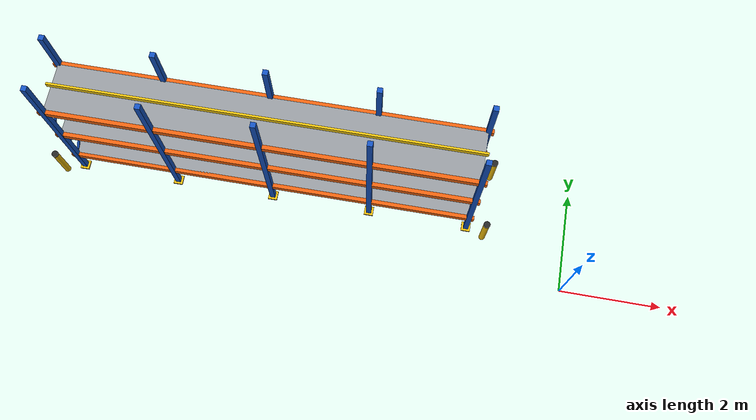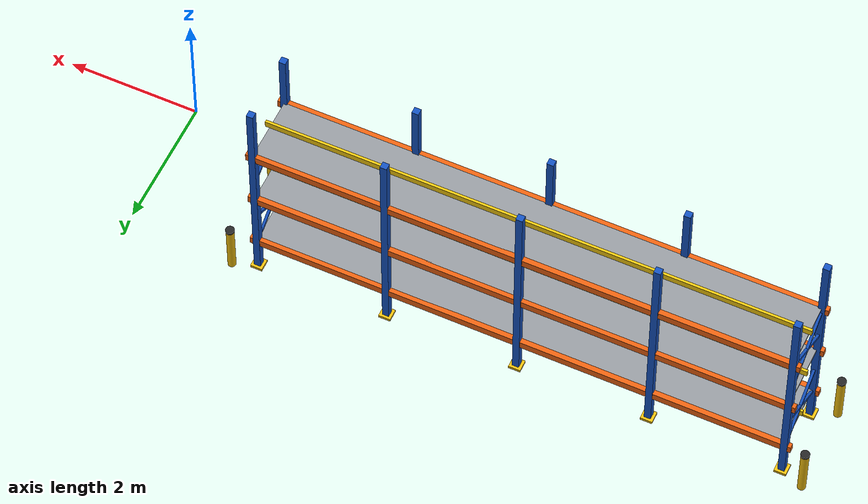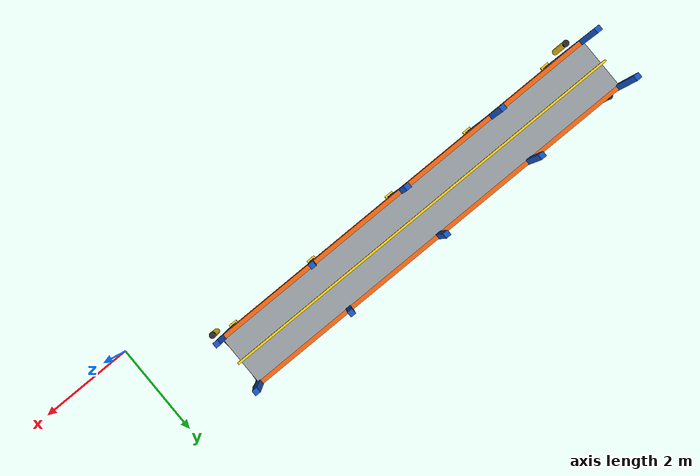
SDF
<sdf version="1.8">
 <world name="warehouse_3d">
  <model name="Rack_D">
   <static>true</static>
   <pose>-6.00 1.50 0 0 0 0</pose>
   <link name="col_0_0">
    <pose>-4.0000 -0.5000 1.8000 0.0000 0.0000 0.0000</pose>
    <collision name="col_0_0_col"><geometry><box><size>0.1000 0.1000 3.6000</size></box></geometry></collision>
    <visual name="col_0_0_vis">
     <geometry><box><size>0.1000 0.1000 3.6000</size></box></geometry>
     <material>
      <ambient>0.052 0.208 0.488 1.00</ambient>
      <diffuse>0.080 0.320 0.750 1.00</diffuse>
      <specular>0.15 0.15 0.15 1.0</specular>
     </material>
    </visual>
   </link>
   <link name="foot_0_0">
    <pose>-4.0000 -0.5000 0.0200 0.0000 0.0000 0.0000</pose>
    <collision name="foot_0_0_col"><geometry><box><size>0.1800 0.1800 0.0400</size></box></geometry></collision>
    <visual name="foot_0_0_vis">
     <geometry><box><size>0.1800 0.1800 0.0400</size></box></geometry>
     <material>
      <ambient>0.617 0.488 0.033 1.00</ambient>
      <diffuse>0.950 0.750 0.050 1.00</diffuse>
      <specular>0.15 0.15 0.15 1.0</specular>
     </material>
    </visual>
   </link>
   <link name="col_0_1">
    <pose>-4.0000 0.5000 1.8000 0.0000 0.0000 0.0000</pose>
    <collision name="col_0_1_col"><geometry><box><size>0.1000 0.1000 3.6000</size></box></geometry></collision>
    <visual name="col_0_1_vis">
     <geometry><box><size>0.1000 0.1000 3.6000</size></box></geometry>
     <material>
      <ambient>0.052 0.208 0.488 1.00</ambient>
      <diffuse>0.080 0.320 0.750 1.00</diffuse>
      <specular>0.15 0.15 0.15 1.0</specular>
     </material>
    </visual>
   </link>
   <link name="foot_0_1">
    <pose>-4.0000 0.5000 0.0200 0.0000 0.0000 0.0000</pose>
    <collision name="foot_0_1_col"><geometry><box><size>0.1800 0.1800 0.0400</size></box></geometry></collision>
    <visual name="foot_0_1_vis">
     <geometry><box><size>0.1800 0.1800 0.0400</size></box></geometry>
     <material>
      <ambient>0.617 0.488 0.033 1.00</ambient>
      <diffuse>0.950 0.750 0.050 1.00</diffuse>
      <specular>0.15 0.15 0.15 1.0</specular>
     </material>
    </visual>
   </link>
   <link name="col_1_0">
    <pose>-2.0000 -0.5000 1.8000 0.0000 0.0000 0.0000</pose>
    <collision name="col_1_0_col"><geometry><box><size>0.1000 0.1000 3.6000</size></box></geometry></collision>
    <visual name="col_1_0_vis">
     <geometry><box><size>0.1000 0.1000 3.6000</size></box></geometry>
     <material>
      <ambient>0.052 0.208 0.488 1.00</ambient>
      <diffuse>0.080 0.320 0.750 1.00</diffuse>
      <specular>0.15 0.15 0.15 1.0</specular>
     </material>
    </visual>
   </link>
   <link name="foot_1_0">
    <pose>-2.0000 -0.5000 0.0200 0.0000 0.0000 0.0000</pose>
    <collision name="foot_1_0_col"><geometry><box><size>0.1800 0.1800 0.0400</size></box></geometry></collision>
    <visual name="foot_1_0_vis">
     <geometry><box><size>0.1800 0.1800 0.0400</size></box></geometry>
     <material>
      <ambient>0.617 0.488 0.033 1.00</ambient>
      <diffuse>0.950 0.750 0.050 1.00</diffuse>
      <specular>0.15 0.15 0.15 1.0</specular>
     </material>
    </visual>
   </link>
   <link name="col_1_1">
    <pose>-2.0000 0.5000 1.8000 0.0000 0.0000 0.0000</pose>
    <collision name="col_1_1_col"><geometry><box><size>0.1000 0.1000 3.6000</size></box></geometry></collision>
    <visual name="col_1_1_vis">
     <geometry><box><size>0.1000 0.1000 3.6000</size></box></geometry>
     <material>
      <ambient>0.052 0.208 0.488 1.00</ambient>
      <diffuse>0.080 0.320 0.750 1.00</diffuse>
      <specular>0.15 0.15 0.15 1.0</specular>
     </material>
    </visual>
   </link>
   <link name="foot_1_1">
    <pose>-2.0000 0.5000 0.0200 0.0000 0.0000 0.0000</pose>
    <collision name="foot_1_1_col"><geometry><box><size>0.1800 0.1800 0.0400</size></box></geometry></collision>
    <visual name="foot_1_1_vis">
     <geometry><box><size>0.1800 0.1800 0.0400</size></box></geometry>
     <material>
      <ambient>0.617 0.488 0.033 1.00</ambient>
      <diffuse>0.950 0.750 0.050 1.00</diffuse>
      <specular>0.15 0.15 0.15 1.0</specular>
     </material>
    </visual>
   </link>
   <link name="col_2_0">
    <pose>0.0000 -0.5000 1.8000 0.0000 0.0000 0.0000</pose>
    <collision name="col_2_0_col"><geometry><box><size>0.1000 0.1000 3.6000</size></box></geometry></collision>
    <visual name="col_2_0_vis">
     <geometry><box><size>0.1000 0.1000 3.6000</size></box></geometry>
     <material>
      <ambient>0.052 0.208 0.488 1.00</ambient>
      <diffuse>0.080 0.320 0.750 1.00</diffuse>
      <specular>0.15 0.15 0.15 1.0</specular>
     </material>
    </visual>
   </link>
   <link name="foot_2_0">
    <pose>0.0000 -0.5000 0.0200 0.0000 0.0000 0.0000</pose>
    <collision name="foot_2_0_col"><geometry><box><size>0.1800 0.1800 0.0400</size></box></geometry></collision>
    <visual name="foot_2_0_vis">
     <geometry><box><size>0.1800 0.1800 0.0400</size></box></geometry>
     <material>
      <ambient>0.617 0.488 0.033 1.00</ambient>
      <diffuse>0.950 0.750 0.050 1.00</diffuse>
      <specular>0.15 0.15 0.15 1.0</specular>
     </material>
    </visual>
   </link>
   <link name="col_2_1">
    <pose>0.0000 0.5000 1.8000 0.0000 0.0000 0.0000</pose>
    <collision name="col_2_1_col"><geometry><box><size>0.1000 0.1000 3.6000</size></box></geometry></collision>
    <visual name="col_2_1_vis">
     <geometry><box><size>0.1000 0.1000 3.6000</size></box></geometry>
     <material>
      <ambient>0.052 0.208 0.488 1.00</ambient>
      <diffuse>0.080 0.320 0.750 1.00</diffuse>
      <specular>0.15 0.15 0.15 1.0</specular>
     </material>
    </visual>
   </link>
   <link name="foot_2_1">
    <pose>0.0000 0.5000 0.0200 0.0000 0.0000 0.0000</pose>
    <collision name="foot_2_1_col"><geometry><box><size>0.1800 0.1800 0.0400</size></box></geometry></collision>
    <visual name="foot_2_1_vis">
     <geometry><box><size>0.1800 0.1800 0.0400</size></box></geometry>
     <material>
      <ambient>0.617 0.488 0.033 1.00</ambient>
      <diffuse>0.950 0.750 0.050 1.00</diffuse>
      <specular>0.15 0.15 0.15 1.0</specular>
     </material>
    </visual>
   </link>
   <link name="col_3_0">
    <pose>2.0000 -0.5000 1.8000 0.0000 0.0000 0.0000</pose>
    <collision name="col_3_0_col"><geometry><box><size>0.1000 0.1000 3.6000</size></box></geometry></collision>
    <visual name="col_3_0_vis">
     <geometry><box><size>0.1000 0.1000 3.6000</size></box></geometry>
     <material>
      <ambient>0.052 0.208 0.488 1.00</ambient>
      <diffuse>0.080 0.320 0.750 1.00</diffuse>
      <specular>0.15 0.15 0.15 1.0</specular>
     </material>
    </visual>
   </link>
   <link name="foot_3_0">
    <pose>2.0000 -0.5000 0.0200 0.0000 0.0000 0.0000</pose>
    <collision name="foot_3_0_col"><geometry><box><size>0.1800 0.1800 0.0400</size></box></geometry></collision>
    <visual name="foot_3_0_vis">
     <geometry><box><size>0.1800 0.1800 0.0400</size></box></geometry>
     <material>
      <ambient>0.617 0.488 0.033 1.00</ambient>
      <diffuse>0.950 0.750 0.050 1.00</diffuse>
      <specular>0.15 0.15 0.15 1.0</specular>
     </material>
    </visual>
   </link>
   <link name="col_3_1">
    <pose>2.0000 0.5000 1.8000 0.0000 0.0000 0.0000</pose>
    <collision name="col_3_1_col"><geometry><box><size>0.1000 0.1000 3.6000</size></box></geometry></collision>
    <visual name="col_3_1_vis">
     <geometry><box><size>0.1000 0.1000 3.6000</size></box></geometry>
     <material>
      <ambient>0.052 0.208 0.488 1.00</ambient>
      <diffuse>0.080 0.320 0.750 1.00</diffuse>
      <specular>0.15 0.15 0.15 1.0</specular>
     </material>
    </visual>
   </link>
   <link name="foot_3_1">
    <pose>2.0000 0.5000 0.0200 0.0000 0.0000 0.0000</pose>
    <collision name="foot_3_1_col"><geometry><box><size>0.1800 0.1800 0.0400</size></box></geometry></collision>
    <visual name="foot_3_1_vis">
     <geometry><box><size>0.1800 0.1800 0.0400</size></box></geometry>
     <material>
      <ambient>0.617 0.488 0.033 1.00</ambient>
      <diffuse>0.950 0.750 0.050 1.00</diffuse>
      <specular>0.15 0.15 0.15 1.0</specular>
     </material>
    </visual>
   </link>
   <link name="col_4_0">
    <pose>4.0000 -0.5000 1.8000 0.0000 0.0000 0.0000</pose>
    <collision name="col_4_0_col"><geometry><box><size>0.1000 0.1000 3.6000</size></box></geometry></collision>
    <visual name="col_4_0_vis">
     <geometry><box><size>0.1000 0.1000 3.6000</size></box></geometry>
     <material>
      <ambient>0.052 0.208 0.488 1.00</ambient>
      <diffuse>0.080 0.320 0.750 1.00</diffuse>
      <specular>0.15 0.15 0.15 1.0</specular>
     </material>
    </visual>
   </link>
   <link name="foot_4_0">
    <pose>4.0000 -0.5000 0.0200 0.0000 0.0000 0.0000</pose>
    <collision name="foot_4_0_col"><geometry><box><size>0.1800 0.1800 0.0400</size></box></geometry></collision>
    <visual name="foot_4_0_vis">
     <geometry><box><size>0.1800 0.1800 0.0400</size></box></geometry>
     <material>
      <ambient>0.617 0.488 0.033 1.00</ambient>
      <diffuse>0.950 0.750 0.050 1.00</diffuse>
      <specular>0.15 0.15 0.15 1.0</specular>
     </material>
    </visual>
   </link>
   <link name="col_4_1">
    <pose>4.0000 0.5000 1.8000 0.0000 0.0000 0.0000</pose>
    <collision name="col_4_1_col"><geometry><box><size>0.1000 0.1000 3.6000</size></box></geometry></collision>
    <visual name="col_4_1_vis">
     <geometry><box><size>0.1000 0.1000 3.6000</size></box></geometry>
     <material>
      <ambient>0.052 0.208 0.488 1.00</ambient>
      <diffuse>0.080 0.320 0.750 1.00</diffuse>
      <specular>0.15 0.15 0.15 1.0</specular>
     </material>
    </visual>
   </link>
   <link name="foot_4_1">
    <pose>4.0000 0.5000 0.0200 0.0000 0.0000 0.0000</pose>
    <collision name="foot_4_1_col"><geometry><box><size>0.1800 0.1800 0.0400</size></box></geometry></collision>
    <visual name="foot_4_1_vis">
     <geometry><box><size>0.1800 0.1800 0.0400</size></box></geometry>
     <material>
      <ambient>0.617 0.488 0.033 1.00</ambient>
      <diffuse>0.950 0.750 0.050 1.00</diffuse>
      <specular>0.15 0.15 0.15 1.0</specular>
     </material>
    </visual>
   </link>
   <link name="x_brace_low_1_w">
    <pose>-4.0000 0.0000 0.9000 0.5500 0.0000 0.0000</pose>
    <visual name="x_brace_low_1_w_vis">
     <geometry><box><size>0.0400 1.0500 0.0400</size></box></geometry>
     <material>
      <ambient>0.052 0.208 0.488 1.00</ambient>
      <diffuse>0.080 0.320 0.750 1.00</diffuse>
      <specular>0.15 0.15 0.15 1.0</specular>
     </material>
    </visual>
   </link>
   <link name="x_brace_low_2_w">
    <pose>-4.0000 0.0000 0.9000 -0.5500 0.0000 0.0000</pose>
    <visual name="x_brace_low_2_w_vis">
     <geometry><box><size>0.0400 1.0500 0.0400</size></box></geometry>
     <material>
      <ambient>0.052 0.208 0.488 1.00</ambient>
      <diffuse>0.080 0.320 0.750 1.00</diffuse>
      <specular>0.15 0.15 0.15 1.0</specular>
     </material>
    </visual>
   </link>
   <link name="x_brace_hi_1_w">
    <pose>-4.0000 0.0000 2.3000 0.5500 0.0000 0.0000</pose>
    <visual name="x_brace_hi_1_w_vis">
     <geometry><box><size>0.0400 1.0500 0.0400</size></box></geometry>
     <material>
      <ambient>0.052 0.208 0.488 1.00</ambient>
      <diffuse>0.080 0.320 0.750 1.00</diffuse>
      <specular>0.15 0.15 0.15 1.0</specular>
     </material>
    </visual>
   </link>
   <link name="x_brace_hi_2_w">
    <pose>-4.0000 0.0000 2.3000 -0.5500 0.0000 0.0000</pose>
    <visual name="x_brace_hi_2_w_vis">
     <geometry><box><size>0.0400 1.0500 0.0400</size></box></geometry>
     <material>
      <ambient>0.052 0.208 0.488 1.00</ambient>
      <diffuse>0.080 0.320 0.750 1.00</diffuse>
      <specular>0.15 0.15 0.15 1.0</specular>
     </material>
    </visual>
   </link>
   <link name="x_brace_low_1_e">
    <pose>4.0000 0.0000 0.9000 0.5500 0.0000 0.0000</pose>
    <visual name="x_brace_low_1_e_vis">
     <geometry><box><size>0.0400 1.0500 0.0400</size></box></geometry>
     <material>
      <ambient>0.052 0.208 0.488 1.00</ambient>
      <diffuse>0.080 0.320 0.750 1.00</diffuse>
      <specular>0.15 0.15 0.15 1.0</specular>
     </material>
    </visual>
   </link>
   <link name="x_brace_low_2_e">
    <pose>4.0000 0.0000 0.9000 -0.5500 0.0000 0.0000</pose>
    <visual name="x_brace_low_2_e_vis">
     <geometry><box><size>0.0400 1.0500 0.0400</size></box></geometry>
     <material>
      <ambient>0.052 0.208 0.488 1.00</ambient>
      <diffuse>0.080 0.320 0.750 1.00</diffuse>
      <specular>0.15 0.15 0.15 1.0</specular>
     </material>
    </visual>
   </link>
   <link name="x_brace_hi_1_e">
    <pose>4.0000 0.0000 2.3000 0.5500 0.0000 0.0000</pose>
    <visual name="x_brace_hi_1_e_vis">
     <geometry><box><size>0.0400 1.0500 0.0400</size></box></geometry>
     <material>
      <ambient>0.052 0.208 0.488 1.00</ambient>
      <diffuse>0.080 0.320 0.750 1.00</diffuse>
      <specular>0.15 0.15 0.15 1.0</specular>
     </material>
    </visual>
   </link>
   <link name="x_brace_hi_2_e">
    <pose>4.0000 0.0000 2.3000 -0.5500 0.0000 0.0000</pose>
    <visual name="x_brace_hi_2_e_vis">
     <geometry><box><size>0.0400 1.0500 0.0400</size></box></geometry>
     <material>
      <ambient>0.052 0.208 0.488 1.00</ambient>
      <diffuse>0.080 0.320 0.750 1.00</diffuse>
      <specular>0.15 0.15 0.15 1.0</specular>
     </material>
    </visual>
   </link>
   <link name="beam_front_0">
    <pose>0.0000 0.5000 0.6000 0.0000 0.0000 0.0000</pose>
    <collision name="beam_front_0_col">
     <geometry><box><size>8.2000 0.0800 0.1200</size></box></geometry>
    </collision>
    <visual name="beam_front_0_vis">
     <geometry><box><size>8.2000 0.0800 0.1200</size></box></geometry>
     <material>
      <ambient>0.598 0.247 0.039 1.00</ambient>
      <diffuse>0.920 0.380 0.060 1.00</diffuse>
      <specular>0.15 0.15 0.15 1.0</specular>
     </material>
    </visual>
   </link>
   <link name="beam_rear_0">
    <pose>0.0000 -0.5000 0.6000 0.0000 0.0000 0.0000</pose>
    <collision name="beam_rear_0_col">
     <geometry><box><size>8.2000 0.0800 0.1200</size></box></geometry>
    </collision>
    <visual name="beam_rear_0_vis">
     <geometry><box><size>8.2000 0.0800 0.1200</size></box></geometry>
     <material>
      <ambient>0.598 0.247 0.039 1.00</ambient>
      <diffuse>0.920 0.380 0.060 1.00</diffuse>
      <specular>0.15 0.15 0.15 1.0</specular>
     </material>
    </visual>
   </link>
   <link name="deck_0">
    <pose>0.0000 0.0000 0.6400 0.0000 0.0000 0.0000</pose>
    <collision name="deck_0_col"><geometry><box><size>8.0000 0.9400 0.0400</size></box></geometry></collision>
    <visual name="deck_0_vis">
     <geometry><box><size>8.0000 0.9400 0.0400</size></box></geometry>
     <material>
      <ambient>0.377 0.390 0.403 1.00</ambient>
      <diffuse>0.580 0.600 0.620 1.00</diffuse>
      <specular>0.15 0.15 0.15 1.0</specular>
     </material>
    </visual>
   </link>
   <link name="backstop_0">
    <pose>0.0000 0.0000 0.7500 0.0000 0.0000 0.0000</pose>
    <visual name="backstop_0_vis">
     <geometry><box><size>8.1000 0.0400 0.1000</size></box></geometry>
     <material>
      <ambient>0.617 0.507 0.033 1.00</ambient>
      <diffuse>0.950 0.780 0.050 1.00</diffuse>
      <specular>0.15 0.15 0.15 1.0</specular>
     </material>
    </visual>
   </link>
   <link name="beam_front_1">
    <pose>0.0000 0.5000 1.6000 0.0000 0.0000 0.0000</pose>
    <collision name="beam_front_1_col">
     <geometry><box><size>8.2000 0.0800 0.1200</size></box></geometry>
    </collision>
    <visual name="beam_front_1_vis">
     <geometry><box><size>8.2000 0.0800 0.1200</size></box></geometry>
     <material>
      <ambient>0.598 0.247 0.039 1.00</ambient>
      <diffuse>0.920 0.380 0.060 1.00</diffuse>
      <specular>0.15 0.15 0.15 1.0</specular>
     </material>
    </visual>
   </link>
   <link name="beam_rear_1">
    <pose>0.0000 -0.5000 1.6000 0.0000 0.0000 0.0000</pose>
    <collision name="beam_rear_1_col">
     <geometry><box><size>8.2000 0.0800 0.1200</size></box></geometry>
    </collision>
    <visual name="beam_rear_1_vis">
     <geometry><box><size>8.2000 0.0800 0.1200</size></box></geometry>
     <material>
      <ambient>0.598 0.247 0.039 1.00</ambient>
      <diffuse>0.920 0.380 0.060 1.00</diffuse>
      <specular>0.15 0.15 0.15 1.0</specular>
     </material>
    </visual>
   </link>
   <link name="deck_1">
    <pose>0.0000 0.0000 1.6400 0.0000 0.0000 0.0000</pose>
    <collision name="deck_1_col"><geometry><box><size>8.0000 0.9400 0.0400</size></box></geometry></collision>
    <visual name="deck_1_vis">
     <geometry><box><size>8.0000 0.9400 0.0400</size></box></geometry>
     <material>
      <ambient>0.377 0.390 0.403 1.00</ambient>
      <diffuse>0.580 0.600 0.620 1.00</diffuse>
      <specular>0.15 0.15 0.15 1.0</specular>
     </material>
    </visual>
   </link>
   <link name="backstop_1">
    <pose>0.0000 0.0000 1.7500 0.0000 0.0000 0.0000</pose>
    <visual name="backstop_1_vis">
     <geometry><box><size>8.1000 0.0400 0.1000</size></box></geometry>
     <material>
      <ambient>0.617 0.507 0.033 1.00</ambient>
      <diffuse>0.950 0.780 0.050 1.00</diffuse>
      <specular>0.15 0.15 0.15 1.0</specular>
     </material>
    </visual>
   </link>
   <link name="beam_front_2">
    <pose>0.0000 0.5000 2.6000 0.0000 0.0000 0.0000</pose>
    <collision name="beam_front_2_col">
     <geometry><box><size>8.2000 0.0800 0.1200</size></box></geometry>
    </collision>
    <visual name="beam_front_2_vis">
     <geometry><box><size>8.2000 0.0800 0.1200</size></box></geometry>
     <material>
      <ambient>0.598 0.247 0.039 1.00</ambient>
      <diffuse>0.920 0.380 0.060 1.00</diffuse>
      <specular>0.15 0.15 0.15 1.0</specular>
     </material>
    </visual>
   </link>
   <link name="beam_rear_2">
    <pose>0.0000 -0.5000 2.6000 0.0000 0.0000 0.0000</pose>
    <collision name="beam_rear_2_col">
     <geometry><box><size>8.2000 0.0800 0.1200</size></box></geometry>
    </collision>
    <visual name="beam_rear_2_vis">
     <geometry><box><size>8.2000 0.0800 0.1200</size></box></geometry>
     <material>
      <ambient>0.598 0.247 0.039 1.00</ambient>
      <diffuse>0.920 0.380 0.060 1.00</diffuse>
      <specular>0.15 0.15 0.15 1.0</specular>
     </material>
    </visual>
   </link>
   <link name="deck_2">
    <pose>0.0000 0.0000 2.6400 0.0000 0.0000 0.0000</pose>
    <collision name="deck_2_col"><geometry><box><size>8.0000 0.9400 0.0400</size></box></geometry></collision>
    <visual name="deck_2_vis">
     <geometry><box><size>8.0000 0.9400 0.0400</size></box></geometry>
     <material>
      <ambient>0.377 0.390 0.403 1.00</ambient>
      <diffuse>0.580 0.600 0.620 1.00</diffuse>
      <specular>0.15 0.15 0.15 1.0</specular>
     </material>
    </visual>
   </link>
   <link name="backstop_2">
    <pose>0.0000 0.0000 2.7500 0.0000 0.0000 0.0000</pose>
    <visual name="backstop_2_vis">
     <geometry><box><size>8.1000 0.0400 0.1000</size></box></geometry>
     <material>
      <ambient>0.617 0.507 0.033 1.00</ambient>
      <diffuse>0.950 0.780 0.050 1.00</diffuse>
      <specular>0.15 0.15 0.15 1.0</specular>
     </material>
    </visual>
   </link>
   <link name="bollard_0">
    <pose>-4.3500 -0.6500 0.4000 0.0000 0.0000 0.0000</pose>
    <collision name="bollard_0_col">
     <geometry><cylinder><radius>0.0600</radius><length>0.8000</length></cylinder></geometry>
    </collision>
    <visual name="bollard_0_vis">
     <geometry><cylinder><radius>0.0600</radius><length>0.8000</length></cylinder></geometry>
     <material>
      <ambient>0.617 0.488 0.033 1.00</ambient>
      <diffuse>0.950 0.750 0.050 1.00</diffuse>
      <specular>0.2 0.2 0.2 1.0</specular>
     </material>
    </visual>
   </link>
   <link name="bollard_cap_0">
    <pose>-4.3500 -0.6500 0.8200 0.0000 0.0000 0.0000</pose>
    <collision name="bollard_cap_0_col">
     <geometry><cylinder><radius>0.0650</radius><length>0.0400</length></cylinder></geometry>
    </collision>
    <visual name="bollard_cap_0_vis">
     <geometry><cylinder><radius>0.0650</radius><length>0.0400</length></cylinder></geometry>
     <material>
      <ambient>0.098 0.098 0.098 1.00</ambient>
      <diffuse>0.150 0.150 0.150 1.00</diffuse>
      <specular>0.2 0.2 0.2 1.0</specular>
     </material>
    </visual>
   </link>
   <link name="bollard_1">
    <pose>-4.3500 0.6500 0.4000 0.0000 0.0000 0.0000</pose>
    <collision name="bollard_1_col">
     <geometry><cylinder><radius>0.0600</radius><length>0.8000</length></cylinder></geometry>
    </collision>
    <visual name="bollard_1_vis">
     <geometry><cylinder><radius>0.0600</radius><length>0.8000</length></cylinder></geometry>
     <material>
      <ambient>0.617 0.488 0.033 1.00</ambient>
      <diffuse>0.950 0.750 0.050 1.00</diffuse>
      <specular>0.2 0.2 0.2 1.0</specular>
     </material>
    </visual>
   </link>
   <link name="bollard_cap_1">
    <pose>-4.3500 0.6500 0.8200 0.0000 0.0000 0.0000</pose>
    <collision name="bollard_cap_1_col">
     <geometry><cylinder><radius>0.0650</radius><length>0.0400</length></cylinder></geometry>
    </collision>
    <visual name="bollard_cap_1_vis">
     <geometry><cylinder><radius>0.0650</radius><length>0.0400</length></cylinder></geometry>
     <material>
      <ambient>0.098 0.098 0.098 1.00</ambient>
      <diffuse>0.150 0.150 0.150 1.00</diffuse>
      <specular>0.2 0.2 0.2 1.0</specular>
     </material>
    </visual>
   </link>
   <link name="bollard_2">
    <pose>4.3500 -0.6500 0.4000 0.0000 0.0000 0.0000</pose>
    <collision name="bollard_2_col">
     <geometry><cylinder><radius>0.0600</radius><length>0.8000</length></cylinder></geometry>
    </collision>
    <visual name="bollard_2_vis">
     <geometry><cylinder><radius>0.0600</radius><length>0.8000</length></cylinder></geometry>
     <material>
      <ambient>0.617 0.488 0.033 1.00</ambient>
      <diffuse>0.950 0.750 0.050 1.00</diffuse>
      <specular>0.2 0.2 0.2 1.0</specular>
     </material>
    </visual>
   </link>
   <link name="bollard_cap_2">
    <pose>4.3500 -0.6500 0.8200 0.0000 0.0000 0.0000</pose>
    <collision name="bollard_cap_2_col">
     <geometry><cylinder><radius>0.0650</radius><length>0.0400</length></cylinder></geometry>
    </collision>
    <visual name="bollard_cap_2_vis">
     <geometry><cylinder><radius>0.0650</radius><length>0.0400</length></cylinder></geometry>
     <material>
      <ambient>0.098 0.098 0.098 1.00</ambient>
      <diffuse>0.150 0.150 0.150 1.00</diffuse>
      <specular>0.2 0.2 0.2 1.0</specular>
     </material>
    </visual>
   </link>
   <link name="bollard_3">
    <pose>4.3500 0.6500 0.4000 0.0000 0.0000 0.0000</pose>
    <collision name="bollard_3_col">
     <geometry><cylinder><radius>0.0600</radius><length>0.8000</length></cylinder></geometry>
    </collision>
    <visual name="bollard_3_vis">
     <geometry><cylinder><radius>0.0600</radius><length>0.8000</length></cylinder></geometry>
     <material>
      <ambient>0.617 0.488 0.033 1.00</ambient>
      <diffuse>0.950 0.750 0.050 1.00</diffuse>
      <specular>0.2 0.2 0.2 1.0</specular>
     </material>
    </visual>
   </link>
   <link name="bollard_cap_3">
    <pose>4.3500 0.6500 0.8200 0.0000 0.0000 0.0000</pose>
    <collision name="bollard_cap_3_col">
     <geometry><cylinder><radius>0.0650</radius><length>0.0400</length></cylinder></geometry>
    </collision>
    <visual name="bollard_cap_3_vis">
     <geometry><cylinder><radius>0.0650</radius><length>0.0400</length></cylinder></geometry>
     <material>
      <ambient>0.098 0.098 0.098 1.00</ambient>
      <diffuse>0.150 0.150 0.150 1.00</diffuse>
      <specular>0.2 0.2 0.2 1.0</specular>
     </material>
    </visual>
   </link>
  </model>
 </world>
</sdf>
